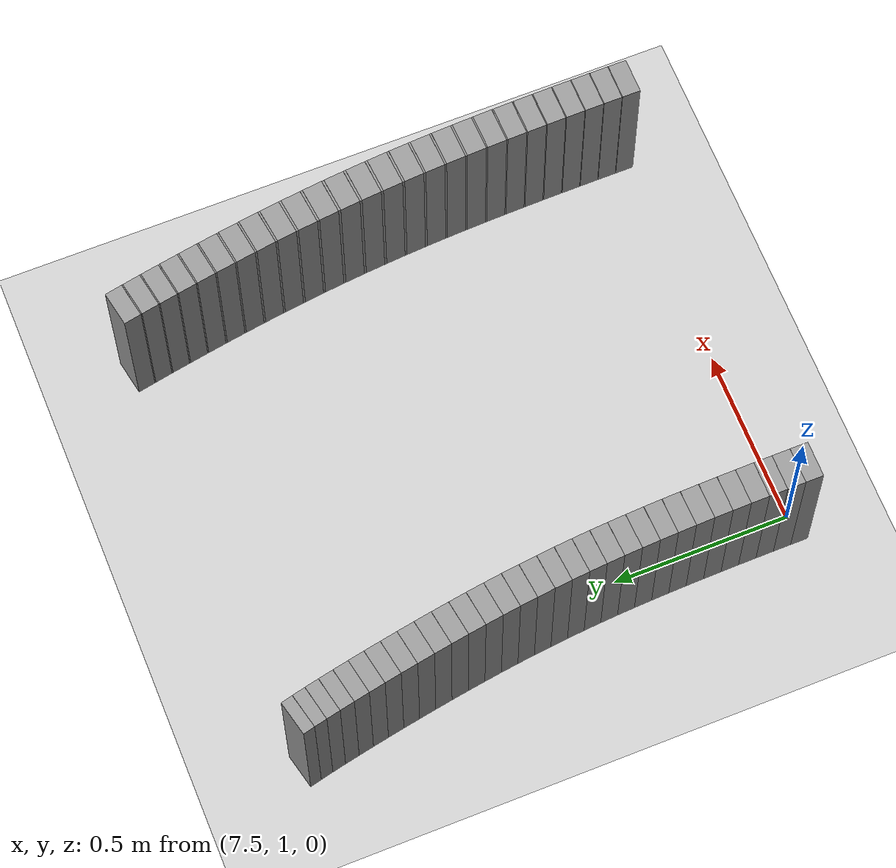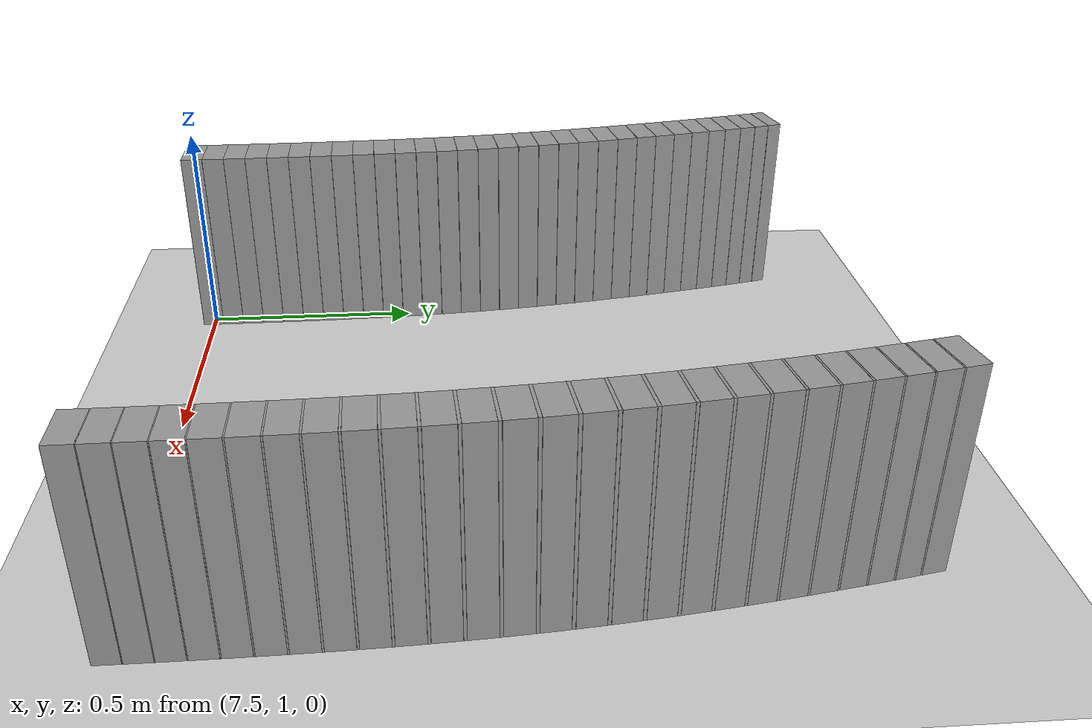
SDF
<sdf version="1.6">
 <world name="default">
  <include><uri>model://ground_plane</uri></include>
  <include><uri>model://sun</uri></include>
  <model name="wall_755_outward">
   <static>true</static>
   <link name="link">
    <collision name="collision">
     <geometry><box><size>0.04999940062287603 0.1 0.45</size></box></geometry>
    </collision>
    <visual name="visual">
     <geometry><box><size>0.04999940062287603 0.1 0.45</size></box></geometry>
     <material>
      <script><uri>file://media/materials/scripts/gazebo.material</uri><name>Gazebo/Gray</name></script>
     </material>
    </visual>
   </link>
   <pose>7.474072652375013 0.9967339557245998 0.225 0 0 1.5715697347107414</pose>
  </model>
  <model name="wall_756_outward">
   <static>true</static>
   <link name="link">
    <collision name="collision">
     <geometry><box><size>0.05058547169745661 0.1 0.45</size></box></geometry>
    </collision>
    <visual name="visual">
     <geometry><box><size>0.05058547169745661 0.1 0.45</size></box></geometry>
     <material>
      <script><uri>file://media/materials/scripts/gazebo.material</uri><name>Gazebo/Gray</name></script>
     </material>
    </visual>
   </link>
   <pose>7.473969025823882 1.0470262439507052 0.225 0 0 1.5741289731119739</pose>
  </model>
  <model name="wall_757_outward">
   <static>true</static>
   <link name="link">
    <collision name="collision">
     <geometry><box><size>0.05102732690675592 0.1 0.45</size></box></geometry>
    </collision>
    <visual name="visual">
     <geometry><box><size>0.05102732690675592 0.1 0.45</size></box></geometry>
     <material>
      <script><uri>file://media/materials/scripts/gazebo.material</uri><name>Gazebo/Gray</name></script>
     </material>
    </visual>
   </link>
   <pose>7.473728324185354 1.0978320233597247 0.225 0 0 1.576926807883827</pose>
  </model>
  <model name="wall_758_outward">
   <static>true</static>
   <link name="link">
    <collision name="collision">
     <geometry><box><size>0.05132378979045729 0.1 0.45</size></box></geometry>
    </collision>
    <visual name="visual">
     <geometry><box><size>0.05132378979045729 0.1 0.45</size></box></geometry>
     <material>
      <script><uri>file://media/materials/scripts/gazebo.material</uri><name>Gazebo/Gray</name></script>
     </material>
    </visual>
   </link>
   <pose>7.4733325857411 1.1490059862339037 0.225 0 0 1.580122678694432</pose>
  </model>
  <model name="wall_759_outward">
   <static>true</static>
   <link name="link">
    <collision name="collision">
     <geometry><box><size>0.05147630832198437 0.1 0.45</size></box></geometry>
    </collision>
    <visual name="visual">
     <geometry><box><size>0.05147630832198437 0.1 0.45</size></box></geometry>
     <material>
      <script><uri>file://media/materials/scripts/gazebo.material</uri><name>Gazebo/Gray</name></script>
     </material>
    </visual>
   </link>
   <pose>7.472756397936079 1.2004027147593663 0.225 0 0 1.5838846402766995</pose>
  </model>
  <model name="wall_760_outward">
   <static>true</static>
   <link name="link">
    <collision name="collision">
     <geometry><box><size>0.05149324610273501 0.1 0.45</size></box></geometry>
    </collision>
    <visual name="visual">
     <geometry><box><size>0.05149324610273501 0.1 0.45</size></box></geometry>
     <material>
      <script><uri>file://media/materials/scripts/gazebo.material</uri><name>Gazebo/Gray</name></script>
     </material>
    </visual>
   </link>
   <pose>7.471967346698286 1.2518813162165605 0.225 0 0 1.5883603807397497</pose>
  </model>
  <model name="wall_761_outward">
   <static>true</static>
   <link name="link">
    <collision name="collision">
     <geometry><box><size>0.051401930930337354 0.1 0.45</size></box></geometry>
    </collision>
    <visual name="visual">
     <geometry><box><size>0.051401930930337354 0.1 0.45</size></box></geometry>
     <material>
      <script><uri>file://media/materials/scripts/gazebo.material</uri><name>Gazebo/Gray</name></script>
     </material>
    </visual>
   </link>
   <pose>7.470926893843407 1.3033182003306485 0.225 0 0 1.5936870001627776</pose>
  </model>
  <model name="wall_762_outward">
   <static>true</static>
   <link name="link">
    <collision name="collision">
     <geometry><box><size>0.051225217573458076 0.1 0.45</size></box></geometry>
    </collision>
    <visual name="visual">
     <geometry><box><size>0.051225217573458076 0.1 0.45</size></box></geometry>
     <material>
      <script><uri>file://media/materials/scripts/gazebo.material</uri><name>Gazebo/Gray</name></script>
     </material>
    </visual>
   </link>
   <pose>7.469592484546444 1.3546141707149433 0.225 0 0 1.599932517251916</pose>
  </model>
  <model name="wall_763_outward">
   <static>true</static>
   <link name="link">
    <collision name="collision">
     <geometry><box><size>0.05098930547745496 0.1 0.45</size></box></geometry>
    </collision>
    <visual name="visual">
     <geometry><box><size>0.05098930547745496 0.1 0.45</size></box></geometry>
     <material>
      <script><uri>file://media/materials/scripts/gazebo.material</uri><name>Gazebo/Gray</name></script>
     </material>
    </visual>
   </link>
   <pose>7.4679192142060185 1.405693698374173 0.225 0 0 1.6071697007660601</pose>
  </model>
  <model name="wall_764_outward">
   <static>true</static>
   <link name="link">
    <collision name="collision">
     <geometry><box><size>0.05073185098207866 0.1 0.45</size></box></geometry>
    </collision>
    <visual name="visual">
     <geometry><box><size>0.05073185098207866 0.1 0.45</size></box></geometry>
     <material>
      <script><uri>file://media/materials/scripts/gazebo.material</uri><name>Gazebo/Gray</name></script>
     </material>
    </visual>
   </link>
   <pose>7.4658613628007355 1.456512198840723 0.225 0 0 1.6153878061569489</pose>
  </model>
  <model name="wall_765_outward">
   <static>true</static>
   <link name="link">
    <collision name="collision">
     <geometry><box><size>0.05048592145687677 0.1 0.45</size></box></geometry>
    </collision>
    <visual name="visual">
     <geometry><box><size>0.05048592145687677 0.1 0.45</size></box></geometry>
     <material>
      <script><uri>file://media/materials/scripts/gazebo.material</uri><name>Gazebo/Gray</name></script>
     </material>
    </visual>
   </link>
   <pose>7.463374481019806 1.5070594151541945 0.225 0 0 1.6245461892416444</pose>
  </model>
  <model name="wall_766_outward">
   <static>true</static>
   <link name="link">
    <collision name="collision">
     <geometry><box><size>0.05028816192538877 0.1 0.45</size></box></geometry>
    </collision>
    <visual name="visual">
     <geometry><box><size>0.05028816192538877 0.1 0.45</size></box></geometry>
     <material>
      <script><uri>file://media/materials/scripts/gazebo.material</uri><name>Gazebo/Gray</name></script>
     </material>
    </visual>
   </link>
   <pose>7.460416910959249 1.5573589528833742 0.225 0 0 1.6345291095814505</pose>
  </model>
  <model name="wall_767_outward">
   <static>true</static>
   <link name="link">
    <collision name="collision">
     <geometry><box><size>0.05015565338645971 0.1 0.45</size></box></geometry>
    </collision>
    <visual name="visual">
     <geometry><box><size>0.05015565338645971 0.1 0.45</size></box></geometry>
     <material>
      <script><uri>file://media/materials/scripts/gazebo.material</uri><name>Gazebo/Gray</name></script>
     </material>
    </visual>
   </link>
   <pose>7.456952177086716 1.6074604926009246 0.225 0 0 1.6451662082789376</pose>
  </model>
  <model name="wall_768_outward">
   <static>true</static>
   <link name="link">
    <collision name="collision">
     <geometry><box><size>0.05010650585417933 0.1 0.45</size></box></geometry>
    </collision>
    <visual name="visual">
     <geometry><box><size>0.05010650585417933 0.1 0.45</size></box></geometry>
     <material>
      <script><uri>file://media/materials/scripts/gazebo.material</uri><name>Gazebo/Gray</name></script>
     </material>
    </visual>
   </link>
   <pose>7.452950037549671 1.6574307891797928 0.225 0 0 1.6562714496041848</pose>
  </model>
  <model name="wall_769_outward">
   <static>true</static>
   <link name="link">
    <collision name="collision">
     <geometry><box><size>0.05014220982315348 0.1 0.45</size></box></geometry>
    </collision>
    <visual name="visual">
     <geometry><box><size>0.05014220982315348 0.1 0.45</size></box></geometry>
     <material>
      <script><uri>file://media/materials/scripts/gazebo.material</uri><name>Gazebo/Gray</name></script>
     </material>
    </visual>
   </link>
   <pose>7.448388405040735 1.707346341504156 0.225 0 0 1.667584888873029</pose>
  </model>
  <model name="wall_770_outward">
   <static>true</static>
   <link name="link">
    <collision name="collision">
     <geometry><box><size>0.05024523481825652 0.1 0.45</size></box></geometry>
    </collision>
    <visual name="visual">
     <geometry><box><size>0.05024523481825652 0.1 0.45</size></box></geometry>
     <material>
      <script><uri>file://media/materials/scripts/gazebo.material</uri><name>Gazebo/Gray</name></script>
     </material>
    </visual>
   </link>
   <pose>7.4432557058535265 1.7572761412389317 0.225 0 0 1.6788731498375669</pose>
  </model>
  <model name="wall_771_outward">
   <static>true</static>
   <link name="link">
    <collision name="collision">
     <geometry><box><size>0.05039663288800668 0.1 0.45</size></box></geometry>
    </collision>
    <visual name="visual">
     <geometry><box><size>0.05039663288800668 0.1 0.45</size></box></geometry>
     <material>
      <script><uri>file://media/materials/scripts/gazebo.material</uri><name>Gazebo/Gray</name></script>
     </material>
    </visual>
   </link>
   <pose>7.437551950396877 1.807272008346724 0.225 0 0 1.689889773374664</pose>
  </model>
  <model name="wall_772_outward">
   <static>true</static>
   <link name="link">
    <collision name="collision">
     <geometry><box><size>0.0505562168507344 0.1 0.45</size></box></geometry>
    </collision>
    <visual name="visual">
     <geometry><box><size>0.0505562168507344 0.1 0.45</size></box></geometry>
     <material>
      <script><uri>file://media/materials/scripts/gazebo.material</uri><name>Gazebo/Gray</name></script>
     </material>
    </visual>
   </link>
   <pose>7.431291072229316 1.8573579393917226 0.225 0 0 1.7004016303081162</pose>
  </model>
  <model name="wall_773_outward">
   <static>true</static>
   <link name="link">
    <collision name="collision">
     <geometry><box><size>0.05067137691725271 0.1 0.45</size></box></geometry>
    </collision>
    <visual name="visual">
     <geometry><box><size>0.05067137691725271 0.1 0.45</size></box></geometry>
     <material>
      <script><uri>file://media/materials/scripts/gazebo.material</uri><name>Gazebo/Gray</name></script>
     </material>
    </visual>
   </link>
   <pose>7.424502512938164 1.9075137951429715 0.225 0 0 1.710243320487764</pose>
  </model>
  <model name="wall_774_outward">
   <static>true</static>
   <link name="link">
    <collision name="collision">
     <geometry><box><size>0.05069943239635506 0.1 0.45</size></box></geometry>
    </collision>
    <visual name="visual">
     <geometry><box><size>0.05069943239635506 0.1 0.45</size></box></geometry>
     <material>
      <script><uri>file://media/materials/scripts/gazebo.material</uri><name>Gazebo/Gray</name></script>
     </material>
    </visual>
   </link>
   <pose>7.417230404571461 1.9576742783139003 0.225 0 0 1.7192943061440742</pose>
  </model>
  <model name="wall_775_outward">
   <static>true</static>
   <link name="link">
    <collision name="collision">
     <geometry><box><size>0.05058167378456856 0.1 0.45</size></box></geometry>
    </collision>
    <visual name="visual">
     <geometry><box><size>0.05058167378456856 0.1 0.45</size></box></geometry>
     <material>
      <script><uri>file://media/materials/scripts/gazebo.material</uri><name>Gazebo/Gray</name></script>
     </material>
    </visual>
   </link>
   <pose>7.409533112707823 2.007725994036016 0.225 0 0 1.7274905179231208</pose>
  </model>
  <model name="wall_776_outward">
   <static>true</static>
   <link name="link">
    <collision name="collision">
     <geometry><box><size>0.050280133267599225 0.1 0.45</size></box></geometry>
    </collision>
    <visual name="visual">
     <geometry><box><size>0.050280133267599225 0.1 0.45</size></box></geometry>
     <material>
      <script><uri>file://media/materials/scripts/gazebo.material</uri><name>Gazebo/Gray</name></script>
     </material>
    </visual>
   </link>
   <pose>7.40148014327141 2.05750943634425 0.225 0 0 1.7348658941817146</pose>
  </model>
  <model name="wall_777_outward">
   <static>true</static>
   <link name="link">
    <collision name="collision">
     <geometry><box><size>0.04974505458963143 0.1 0.45</size></box></geometry>
    </collision>
    <visual name="visual">
     <geometry><box><size>0.04974505458963143 0.1 0.45</size></box></geometry>
     <material>
      <script><uri>file://media/materials/scripts/gazebo.material</uri><name>Gazebo/Gray</name></script>
     </material>
    </visual>
   </link>
   <pose>7.393149353317451 2.106823026798084 0.225 0 0 1.7414718190460587</pose>
  </model>
  <model name="wall_778_outward">
   <static>true</static>
   <link name="link">
    <collision name="collision">
     <geometry><box><size>0.04893772737349848 0.1 0.45</size></box></geometry>
    </collision>
    <visual name="visual">
     <geometry><box><size>0.04893772737349848 0.1 0.45</size></box></geometry>
     <material>
      <script><uri>file://media/materials/scripts/gazebo.material</uri><name>Gazebo/Gray</name></script>
     </material>
    </visual>
   </link>
   <pose>7.384623387963387 2.155421983777271 0.225 0 0 1.7475059111861817</pose>
  </model>
  <model name="wall_779_outward">
   <static>true</static>
   <link name="link">
    <collision name="collision">
     <geometry><box><size>0.04782854464664337 0.1 0.45</size></box></geometry>
    </collision>
    <visual name="visual">
     <geometry><box><size>0.04782854464664337 0.1 0.45</size></box></geometry>
     <material>
      <script><uri>file://media/materials/scripts/gazebo.material</uri><name>Gazebo/Gray</name></script>
     </material>
    </visual>
   </link>
   <pose>7.375984475066058 2.203027426495668 0.225 0 0 1.753182788865761</pose>
  </model>
  <model name="wall_780_outward">
   <static>true</static>
   <link name="link">
    <collision name="collision">
     <geometry><box><size>0.04638214005898841 0.1 0.45</size></box></geometry>
    </collision>
    <visual name="visual">
     <geometry><box><size>0.04638214005898841 0.1 0.45</size></box></geometry>
     <material>
      <script><uri>file://media/materials/scripts/gazebo.material</uri><name>Gazebo/Gray</name></script>
     </material>
    </visual>
   </link>
   <pose>7.367311573612363 2.2493272782761604 0.225 0 0 1.7588454700725462</pose>
  </model>
  <model name="wall_781_outward">
   <static>true</static>
   <link name="link">
    <collision name="collision">
     <geometry><box><size>0.04458674463327589 0.1 0.45</size></box></geometry>
    </collision>
    <visual name="visual">
     <geometry><box><size>0.04458674463327589 0.1 0.45</size></box></geometry>
     <material>
      <script><uri>file://media/materials/scripts/gazebo.material</uri><name>Gazebo/Gray</name></script>
     </material>
    </visual>
   </link>
   <pose>7.3586760619513445 2.293984231605792 0.225 0 0 1.7649001853922186</pose>
  </model>
  <model name="wall_782_outward">
   <static>true</static>
   <link name="link">
    <collision name="collision">
     <geometry><box><size>0.04242651113943479 0.1 0.45</size></box></geometry>
    </collision>
    <visual name="visual">
     <geometry><box><size>0.04242651113943479 0.1 0.45</size></box></geometry>
     <material>
      <script><uri>file://media/materials/scripts/gazebo.material</uri><name>Gazebo/Gray</name></script>
     </material>
    </visual>
   </link>
   <pose>7.350140303303038 2.3366450434388577 0.225 0 0 1.771817431136403</pose>
  </model>
  <model name="wall_783_outward">
   <static>true</static>
   <link name="link">
    <collision name="collision">
     <geometry><box><size>0.03988528980407616 0.1 0.45</size></box></geometry>
    </collision>
    <visual name="visual">
     <geometry><box><size>0.03988528980407616 0.1 0.45</size></box></geometry>
     <material>
      <script><uri>file://media/materials/scripts/gazebo.material</uri><name>Gazebo/Gray</name></script>
     </material>
    </visual>
   </link>
   <pose>7.341759904404654 2.3769383138932487 0.225 0 0 1.780155846308812</pose>
  </model>
  <model name="wall_784_outward">
   <static>true</static>
   <link name="link">
    <collision name="collision">
     <geometry><box><size>0.03695322734307394 0.1 0.45</size></box></geometry>
    </collision>
    <visual name="visual">
     <geometry><box><size>0.03695322734307394 0.1 0.45</size></box></geometry>
     <material>
      <script><uri>file://media/materials/scripts/gazebo.material</uri><name>Gazebo/Gray</name></script>
     </material>
    </visual>
   </link>
   <pose>7.3335873478316245 2.4144777450938535 0.225 0 0 1.7905558342553964</pose>
  </model>
  <model name="wall_785_outward">
   <static>true</static>
   <link name="link">
    <collision name="collision">
     <geometry><box><size>0.033640988669867256 0.1 0.45</size></box></geometry>
    </collision>
    <visual name="visual">
     <geometry><box><size>0.033640988669867256 0.1 0.45</size></box></geometry>
     <material>
      <script><uri>file://media/materials/scripts/gazebo.material</uri><name>Gazebo/Gray</name></script>
     </material>
    </visual>
   </link>
   <pose>7.325676952891332 2.448876256914524 0.225 0 0 1.8037216019436337</pose>
  </model>
  <model name="wall_1102_inward">
   <static>true</static>
   <link name="link">
    <collision name="collision">
     <geometry><box><size>0.051518427734163715 0.1 0.45</size></box></geometry>
    </collision>
    <visual name="visual">
     <geometry><box><size>0.051518427734163715 0.1 0.45</size></box></geometry>
     <material>
      <script><uri>file://media/materials/scripts/gazebo.material</uri><name>Gazebo/Gray</name></script>
     </material>
    </visual>
   </link>
   <pose>8.674072287092049 0.9976703035125246 0.225 0 0 1.5715697347107274</pose>
  </model>
  <model name="wall_1103_inward">
   <static>true</static>
   <link name="link">
    <collision name="collision">
     <geometry><box><size>0.001535542621692474 0.1 0.45</size></box></geometry>
    </collision>
    <visual name="visual">
     <geometry><box><size>0.001535542621692474 0.1 0.45</size></box></geometry>
     <material>
      <script><uri>file://media/materials/scripts/gazebo.material</uri><name>Gazebo/Gray</name></script>
     </material>
    </visual>
   </link>
   <pose>8.674050788459912 1.0241972793683431 0.225 0 0 1.5728493539117039</pose>
  </model>
  <model name="wall_1104_inward">
   <static>true</static>
   <link name="link">
    <collision name="collision">
     <geometry><box><size>0.05219259461584057 0.1 0.45</size></box></geometry>
    </collision>
    <visual name="visual">
     <geometry><box><size>0.05219259461584057 0.1 0.45</size></box></geometry>
     <material>
      <script><uri>file://media/materials/scripts/gazebo.material</uri><name>Gazebo/Gray</name></script>
     </material>
    </visual>
   </link>
   <pose>8.673962242637575 1.051061201449523 0.225 0 0 1.574128973111975</pose>
  </model>
  <model name="wall_1105_inward">
   <static>true</static>
   <link name="link">
    <collision name="collision">
     <geometry><box><size>0.0016787003155830154 0.1 0.45</size></box></geometry>
    </collision>
    <visual name="visual">
     <geometry><box><size>0.0016787003155830154 0.1 0.45</size></box></geometry>
     <material>
      <script><uri>file://media/materials/scripts/gazebo.material</uri><name>Gazebo/Gray</name></script>
     </material>
    </visual>
   </link>
   <pose>8.673871301645528 1.0779966946001551 0.225 0 0 1.5755278904978922</pose>
  </model>
  <model name="wall_1106_inward">
   <static>true</static>
   <link name="link">
    <collision name="collision">
     <geometry><box><size>0.05282543994509279 0.1 0.45</size></box></geometry>
    </collision>
    <visual name="visual">
     <geometry><box><size>0.05282543994509279 0.1 0.45</size></box></geometry>
     <material>
      <script><uri>file://media/materials/scripts/gazebo.material</uri><name>Gazebo/Gray</name></script>
     </material>
    </visual>
   </link>
   <pose>8.673705408555556 1.1052482590045427 0.225 0 0 1.5769268078838263</pose>
  </model>
  <model name="wall_1107_inward">
   <static>true</static>
   <link name="link">
    <collision name="collision">
     <geometry><box><size>0.0019175216703303777 0.1 0.45</size></box></geometry>
    </collision>
    <visual name="visual">
     <geometry><box><size>0.0019175216703303777 0.1 0.45</size></box></geometry>
     <material>
      <script><uri>file://media/materials/scripts/gazebo.material</uri><name>Gazebo/Gray</name></script>
     </material>
    </visual>
   </link>
   <pose>8.673536077260216 1.1326192148493508 0.225 0 0 1.5785247432885945</pose>
  </model>
  <model name="wall_1108_inward">
   <static>true</static>
   <link name="link">
    <collision name="collision">
     <geometry><box><size>0.05341114165512835 0.1 0.45</size></box></geometry>
    </collision>
    <visual name="visual">
     <geometry><box><size>0.05341114165512835 0.1 0.45</size></box></geometry>
     <material>
      <script><uri>file://media/materials/scripts/gazebo.material</uri><name>Gazebo/Gray</name></script>
     </material>
    </visual>
   </link>
   <pose>8.67327960569035 1.1602823564515172 0.225 0 0 1.5801226786944316</pose>
  </model>
  <model name="wall_1109_inward">
   <static>true</static>
   <link name="link">
    <collision name="collision">
     <geometry><box><size>0.002257175618348771 0.1 0.45</size></box></geometry>
    </collision>
    <visual name="visual">
     <geometry><box><size>0.002257175618348771 0.1 0.45</size></box></geometry>
     <material>
      <script><uri>file://media/materials/scripts/gazebo.material</uri><name>Gazebo/Gray</name></script>
     </material>
    </visual>
   </link>
   <pose>8.673017895555507 1.1881152827831836 0.225 0 0 1.582003659485509</pose>
  </model>
  <model name="wall_1110_inward">
   <static>true</static>
   <link name="link">
    <collision name="collision">
     <geometry><box><size>0.05394762250837233 0.1 0.45</size></box></geometry>
    </collision>
    <visual name="visual">
     <geometry><box><size>0.05394762250837233 0.1 0.45</size></box></geometry>
     <material>
      <script><uri>file://media/materials/scripts/gazebo.material</uri><name>Gazebo/Gray</name></script>
     </material>
    </visual>
   </link>
   <pose>8.672652215743234 1.2162153006423182 0.225 0 0 1.5838846402767046</pose>
  </model>
  <model name="wall_1111_inward">
   <static>true</static>
   <link name="link">
    <collision name="collision">
     <geometry><box><size>0.002685442036350546 0.1 0.45</size></box></geometry>
    </collision>
    <visual name="visual">
     <geometry><box><size>0.002685442036350546 0.1 0.45</size></box></geometry>
     <material>
      <script><uri>file://media/materials/scripts/gazebo.material</uri><name>Gazebo/Gray</name></script>
     </material>
    </visual>
   </link>
   <pose>8.672278606141848 1.2445293648933924 0.225 0 0 1.5861225105087402</pose>
  </model>
  <model name="wall_1112_inward">
   <static>true</static>
   <link name="link">
    <collision name="collision">
     <geometry><box><size>0.05443396008824362 0.1 0.45</size></box></geometry>
    </collision>
    <visual name="visual">
     <geometry><box><size>0.05443396008824362 0.1 0.45</size></box></geometry>
     <material>
      <script><uri>file://media/materials/scripts/gazebo.material</uri><name>Gazebo/Gray</name></script>
     </material>
    </visual>
   </link>
   <pose>8.67178001223131 1.273084710204936 0.225 0 0 1.588360380739753</pose>
  </model>
  <model name="wall_1113_inward">
   <static>true</static>
   <link name="link">
    <collision name="collision">
     <geometry><box><size>0.003195967875523281 0.1 0.45</size></box></geometry>
    </collision>
    <visual name="visual">
     <geometry><box><size>0.003195967875523281 0.1 0.45</size></box></geometry>
     <material>
      <script><uri>file://media/materials/scripts/gazebo.material</uri><name>Gazebo/Gray</name></script>
     </material>
    </visual>
   </link>
   <pose>8.671269675506016 1.3018951492367155 0.225 0 0 1.5910236904512651</pose>
  </model>
  <model name="wall_1114_inward">
   <static>true</static>
   <link name="link">
    <collision name="collision">
     <geometry><box><size>0.05487358175275083 0.1 0.45</size></box></geometry>
    </collision>
    <visual name="visual">
     <geometry><box><size>0.05487358175275083 0.1 0.45</size></box></geometry>
     <material>
      <script><uri>file://media/materials/scripts/gazebo.material</uri><name>Gazebo/Gray</name></script>
     </material>
    </visual>
   </link>
   <pose>8.670609362935851 1.3309224092663086 0.225 0 0 1.593687000162769</pose>
  </model>
  <model name="wall_1115_inward">
   <static>true</static>
   <link name="link">
    <collision name="collision">
     <geometry><box><size>0.003747304163098984 0.1 0.45</size></box></geometry>
    </collision>
    <visual name="visual">
     <geometry><box><size>0.003747304163098984 0.1 0.45</size></box></geometry>
     <material>
      <script><uri>file://media/materials/scripts/gazebo.material</uri><name>Gazebo/Gray</name></script>
     </material>
    </visual>
   </link>
   <pose>8.669932636539844 1.360225030419945 0.225 0 0 1.5968097587072607</pose>
  </model>
  <model name="wall_1116_inward">
   <static>true</static>
   <link name="link">
    <collision name="collision">
     <geometry><box><size>0.05527004332129058 0.1 0.45</size></box></geometry>
    </collision>
    <visual name="visual">
     <geometry><box><size>0.05527004332129058 0.1 0.45</size></box></geometry>
     <material>
      <script><uri>file://media/materials/scripts/gazebo.material</uri><name>Gazebo/Gray</name></script>
     </material>
    </visual>
   </link>
   <pose>8.66907883657845 1.3897213411507154 0.225 0 0 1.5999325172519152</pose>
  </model>
  <model name="wall_1117_inward">
   <static>true</static>
   <link name="link">
    <collision name="collision">
     <geometry><box><size>0.004342300631980733 0.1 0.45</size></box></geometry>
    </collision>
    <visual name="visual">
     <geometry><box><size>0.004342300631980733 0.1 0.45</size></box></geometry>
     <material>
      <script><uri>file://media/materials/scripts/gazebo.material</uri><name>Gazebo/Gray</name></script>
     </material>
    </visual>
   </link>
   <pose>8.668202668400955 1.4195146194459416 0.225 0 0 1.6035511090089387</pose>
  </model>
  <model name="wall_1118_inward">
   <static>true</static>
   <link name="link">
    <collision name="collision">
     <geometry><box><size>0.05562591550149158 0.1 0.45</size></box></geometry>
    </collision>
    <visual name="visual">
     <geometry><box><size>0.05562591550149158 0.1 0.45</size></box></geometry>
     <material>
      <script><uri>file://media/materials/scripts/gazebo.material</uri><name>Gazebo/Gray</name></script>
     </material>
    </visual>
   </link>
   <pose>8.667120137505446 1.4494791663757827 0.225 0 0 1.6071697007660681</pose>
  </model>
  <model name="wall_1119_inward">
   <static>true</static>
   <link name="link">
    <collision name="collision">
     <geometry><box><size>0.00493084935882971 0.1 0.45</size></box></geometry>
    </collision>
    <visual name="visual">
     <geometry><box><size>0.00493084935882971 0.1 0.45</size></box></geometry>
     <material>
      <script><uri>file://media/materials/scripts/gazebo.material</uri><name>Gazebo/Gray</name></script>
     </material>
    </visual>
   </link>
   <pose>8.66600893033489 1.4797371323259694 0.225 0 0 1.6112787534615705</pose>
  </model>
  <model name="wall_1120_inward">
   <static>true</static>
   <link name="link">
    <collision name="collision">
     <geometry><box><size>0.05594483060487119 0.1 0.45</size></box></geometry>
    </collision>
    <visual name="visual">
     <geometry><box><size>0.05594483060487119 0.1 0.45</size></box></geometry>
     <material>
      <script><uri>file://media/materials/scripts/gazebo.material</uri><name>Gazebo/Gray</name></script>
     </material>
    </visual>
   </link>
   <pose>8.664662233164629 1.5101451468137017 0.225 0 0 1.6153878061569436</pose>
  </model>
  <model name="wall_1121_inward">
   <static>true</static>
   <link name="link">
    <collision name="collision">
     <geometry><box><size>0.005495010646632295 0.1 0.45</size></box></geometry>
    </collision>
    <visual name="visual">
     <geometry><box><size>0.005495010646632295 0.1 0.45</size></box></geometry>
     <material>
      <script><uri>file://media/materials/scripts/gazebo.material</uri><name>Gazebo/Gray</name></script>
     </material>
    </visual>
   </link>
   <pose>8.663280272861297 1.5408339411434993 0.225 0 0 1.619966997699104</pose>
  </model>
  <model name="wall_1122_inward">
   <static>true</static>
   <link name="link">
    <collision name="collision">
     <geometry><box><size>0.05622835656090268 0.1 0.45</size></box></geometry>
    </collision>
    <visual name="visual">
     <geometry><box><size>0.05622835656090268 0.1 0.45</size></box></geometry>
     <material>
      <script><uri>file://media/materials/scripts/gazebo.material</uri><name>Gazebo/Gray</name></script>
     </material>
    </visual>
   </link>
   <pose>8.661634824915282 1.571651702194439 0.225 0 0 1.6245461892416457</pose>
  </model>
  <model name="wall_1123_inward">
   <static>true</static>
   <link name="link">
    <collision name="collision">
     <geometry><box><size>0.0059897273317975844 0.1 0.45</size></box></geometry>
    </collision>
    <visual name="visual">
     <geometry><box><size>0.0059897273317975844 0.1 0.45</size></box></geometry>
     <material>
      <script><uri>file://media/materials/scripts/gazebo.material</uri><name>Gazebo/Gray</name></script>
     </material>
    </visual>
   </link>
   <pose>8.659948598118435 1.602714976848678 0.225 0 0 1.6295376494116374</pose>
  </model>
  <model name="wall_1124_inward">
   <static>true</static>
   <link name="link">
    <collision name="collision">
     <geometry><box><size>0.056474222598470486 0.1 0.45</size></box></geometry>
    </collision>
    <visual name="visual">
     <geometry><box><size>0.056474222598470486 0.1 0.45</size></box></geometry>
     <material>
      <script><uri>file://media/materials/scripts/gazebo.material</uri><name>Gazebo/Gray</name></script>
     </material>
    </visual>
   </link>
   <pose>8.657974365400626 1.6338844580516312 0.225 0 0 1.6345291095814591</pose>
  </model>
  <model name="wall_1125_inward">
   <static>true</static>
   <link name="link">
    <collision name="collision">
     <geometry><box><size>0.006382229129395957 0.1 0.45</size></box></geometry>
    </collision>
    <visual name="visual">
     <geometry><box><size>0.006382229129395957 0.1 0.45</size></box></geometry>
     <material>
      <script><uri>file://media/materials/scripts/gazebo.material</uri><name>Gazebo/Gray</name></script>
     </material>
    </visual>
   </link>
   <pose>8.65595577813696 1.6652477508880246 0.225 0 0 1.6398476589301731</pose>
  </model>
  <model name="wall_1126_inward">
   <static>true</static>
   <link name="link">
    <collision name="collision">
     <geometry><box><size>0.05667841972235324 0.1 0.45</size></box></geometry>
    </collision>
    <visual name="visual">
     <geometry><box><size>0.05667841972235324 0.1 0.45</size></box></geometry>
     <material>
      <script><uri>file://media/materials/scripts/gazebo.material</uri><name>Gazebo/Gray</name></script>
     </material>
    </visual>
   </link>
   <pose>8.653629961074625 1.696692136321761 0.225 0 0 1.6451662082789251</pose>
  </model>
  <model name="wall_1127_inward">
   <static>true</static>
   <link name="link">
    <collision name="collision">
     <geometry><box><size>0.006663110555984053 0.1 0.45</size></box></geometry>
    </collision>
    <visual name="visual">
     <geometry><box><size>0.006663110555984053 0.1 0.45</size></box></geometry>
     <material>
      <script><uri>file://media/materials/scripts/gazebo.material</uri><name>Gazebo/Gray</name></script>
     </material>
    </visual>
   </link>
   <pose>8.651258336800119 1.7282739325323166 0.225 0 0 1.6507188289416221</pose>
  </model>
  <model name="wall_1128_inward">
   <static>true</static>
   <link name="link">
    <collision name="collision">
     <geometry><box><size>0.05683218047383874 0.1 0.45</size></box></geometry>
    </collision>
    <visual name="visual">
     <geometry><box><size>0.05683218047383874 0.1 0.45</size></box></geometry>
     <material>
      <script><uri>file://media/materials/scripts/gazebo.material</uri><name>Gazebo/Gray</name></script>
     </material>
    </visual>
   </link>
   <pose>8.6485664416113 1.7599072026323253 0.225 0 0 1.6562714496041964</pose>
  </model>
  <model name="wall_1129_inward">
   <static>true</static>
   <link name="link">
    <collision name="collision">
     <geometry><box><size>0.006788027360073792 0.1 0.45</size></box></geometry>
    </collision>
    <visual name="visual">
     <geometry><box><size>0.006788027360073792 0.1 0.45</size></box></geometry>
     <material>
      <script><uri>file://media/materials/scripts/gazebo.material</uri><name>Gazebo/Gray</name></script>
     </material>
    </visual>
   </link>
   <pose>8.645831654509028 1.7915994818914878 0.225 0 0 1.6619281692386254</pose>
  </model>
  <model name="wall_1130_inward">
   <static>true</static>
   <link name="link">
    <collision name="collision">
     <geometry><box><size>0.05692279205552522 0.1 0.45</size></box></geometry>
    </collision>
    <visual name="visual">
     <geometry><box><size>0.05692279205552522 0.1 0.45</size></box></geometry>
     <material>
      <script><uri>file://media/materials/scripts/gazebo.material</uri><name>Gazebo/Gray</name></script>
     </material>
    </visual>
   </link>
   <pose>8.642772341203525 1.8233075981830327 0.225 0 0 1.6675848888730274</pose>
  </model>
  <model name="wall_1131_inward">
   <static>true</static>
   <link name="link">
    <collision name="collision">
     <geometry><box><size>0.0067729206186590805 0.1 0.45</size></box></geometry>
    </collision>
    <visual name="visual">
     <geometry><box><size>0.0067729206186590805 0.1 0.45</size></box></geometry>
     <material>
      <script><uri>file://media/materials/scripts/gazebo.material</uri><name>Gazebo/Gray</name></script>
     </material>
    </visual>
   </link>
   <pose>8.639675624713954 1.8550044944009607 0.225 0 0 1.6732290193552468</pose>
  </model>
  <model name="wall_1132_inward">
   <static>true</static>
   <link name="link">
    <collision name="collision">
     <geometry><box><size>0.05693676955579693 0.1 0.45</size></box></geometry>
    </collision>
    <visual name="visual">
     <geometry><box><size>0.05693676955579693 0.1 0.45</size></box></geometry>
     <material>
      <script><uri>file://media/materials/scripts/gazebo.material</uri><name>Gazebo/Gray</name></script>
     </material>
    </visual>
   </link>
   <pose>8.636258560436337 1.8866754867456725 0.225 0 0 1.6788731498375635</pose>
  </model>
  <model name="wall_1133_inward">
   <static>true</static>
   <link name="link">
    <collision name="collision">
     <geometry><box><size>0.0066099406962262085 0.1 0.45</size></box></geometry>
    </collision>
    <visual name="visual">
     <geometry><box><size>0.0066099406962262085 0.1 0.45</size></box></geometry>
     <material>
      <script><uri>file://media/materials/scripts/gazebo.material</uri><name>Gazebo/Gray</name></script>
     </material>
    </visual>
   </link>
   <pose>8.632813185289582 1.9182614429813687 0.225 0 0 1.6843814616061046</pose>
  </model>
  <model name="wall_1134_inward">
   <static>true</static>
   <link name="link">
    <collision name="collision">
     <geometry><box><size>0.05685523949475052 0.1 0.45</size></box></geometry>
    </collision>
    <visual name="visual">
     <geometry><box><size>0.05685523949475052 0.1 0.45</size></box></geometry>
     <material>
      <script><uri>file://media/materials/scripts/gazebo.material</uri><name>Gazebo/Gray</name></script>
     </material>
    </visual>
   </link>
   <pose>8.629061050578983 1.949771376472749 0.225 0 0 1.6898897733746678</pose>
  </model>
  <model name="wall_1135_inward">
   <static>true</static>
   <link name="link">
    <collision name="collision">
     <geometry><box><size>0.006307085121331419 0.1 0.45</size></box></geometry>
    </collision>
    <visual name="visual">
     <geometry><box><size>0.006307085121331419 0.1 0.45</size></box></geometry>
     <material>
      <script><uri>file://media/materials/scripts/gazebo.material</uri><name>Gazebo/Gray</name></script>
     </material>
    </visual>
   </link>
   <pose>8.625292373462074 1.9811268290930255 0.225 0 0 1.6951457018412626</pose>
  </model>
  <model name="wall_1136_inward">
   <static>true</static>
   <link name="link">
    <collision name="collision">
     <geometry><box><size>0.056662333855359966 0.1 0.45</size></box></geometry>
    </collision>
    <visual name="visual">
     <geometry><box><size>0.056662333855359966 0.1 0.45</size></box></geometry>
     <material>
      <script><uri>file://media/materials/scripts/gazebo.material</uri><name>Gazebo/Gray</name></script>
     </material>
    </visual>
   </link>
   <pose>8.6212396438391 2.0123495747454863 0.225 0 0 1.7004016303081164</pose>
  </model>
  <model name="wall_1137_inward">
   <static>true</static>
   <link name="link">
    <collision name="collision">
     <geometry><box><size>0.0059049902764383615 0.1 0.45</size></box></geometry>
    </collision>
    <visual name="visual">
     <geometry><box><size>0.0059049902764383615 0.1 0.45</size></box></geometry>
     <material>
      <script><uri>file://media/materials/scripts/gazebo.material</uri><name>Gazebo/Gray</name></script>
     </material>
    </visual>
   </link>
   <pose>8.617182054566332 2.043368947015848 0.225 0 0 1.7053224753979466</pose>
  </model>
  <model name="wall_1138_inward">
   <static>true</static>
   <link name="link">
    <collision name="collision">
     <geometry><box><size>0.05633922203634569 0.1 0.45</size></box></geometry>
    </collision>
    <visual name="visual">
     <geometry><box><size>0.05633922203634569 0.1 0.45</size></box></geometry>
     <material>
      <script><uri>file://media/materials/scripts/gazebo.material</uri><name>Gazebo/Gray</name></script>
     </material>
    </visual>
   </link>
   <pose>8.612870614584603 2.074190935318751 0.225 0 0 1.7102433204877547</pose>
  </model>
  <model name="wall_1139_inward">
   <static>true</static>
   <link name="link">
    <collision name="collision">
     <geometry><box><size>0.005430572857323519 0.1 0.45</size></box></geometry>
    </collision>
    <visual name="visual">
     <geometry><box><size>0.005430572857323519 0.1 0.45</size></box></geometry>
     <material>
      <script><uri>file://media/materials/scripts/gazebo.material</uri><name>Gazebo/Gray</name></script>
     </material>
    </visual>
   </link>
   <pose>8.608565588070846 2.1047742979613338 0.225 0 0 1.7147688133160237</pose>
  </model>
  <model name="wall_1140_inward">
   <static>true</static>
   <link name="link">
    <collision name="collision">
     <geometry><box><size>0.055873623928770585 0.1 0.45</size></box></geometry>
    </collision>
    <visual name="visual">
     <geometry><box><size>0.055873623928770585 0.1 0.45</size></box></geometry>
     <material>
      <script><uri>file://media/materials/scripts/gazebo.material</uri><name>Gazebo/Gray</name></script>
     </material>
    </visual>
   </link>
   <pose>8.604042680829686 2.1350908428245114 0.225 0 0 1.7192943061440886</pose>
  </model>
  <model name="wall_1141_inward">
   <static>true</static>
   <link name="link">
    <collision name="collision">
     <geometry><box><size>0.004917713302322563 0.1 0.45</size></box></geometry>
    </collision>
    <visual name="visual">
     <geometry><box><size>0.004917713302322563 0.1 0.45</size></box></geometry>
     <material>
      <script><uri>file://media/materials/scripts/gazebo.material</uri><name>Gazebo/Gray</name></script>
     </material>
    </visual>
   </link>
   <pose>8.599535593576997 2.165150478241931 0.225 0 0 1.723392412033606</pose>
  </model>
  <model name="wall_1142_inward">
   <static>true</static>
   <link name="link">
    <collision name="collision">
     <geometry><box><size>0.055253173990892225 0.1 0.45</size></box></geometry>
    </collision>
    <visual name="visual">
     <geometry><box><size>0.055253173990892225 0.1 0.45</size></box></geometry>
     <material>
      <script><uri>file://media/materials/scripts/gazebo.material</uri><name>Gazebo/Gray</name></script>
     </material>
    </visual>
   </link>
   <pose>8.594850603451508 2.19486888408904 0.225 0 0 1.7274905179231312</pose>
  </model>
  <model name="wall_1143_inward">
   <static>true</static>
   <link name="link">
    <collision name="collision">
     <geometry><box><size>0.004425215725359871 0.1 0.45</size></box></geometry>
    </collision>
    <visual name="visual">
     <geometry><box><size>0.004425215725359871 0.1 0.45</size></box></geometry>
     <material>
      <script><uri>file://media/materials/scripts/gazebo.material</uri><name>Gazebo/Gray</name></script>
     </material>
    </visual>
   </link>
   <pose>8.590186027901755 2.2243412177845023 0.225 0 0 1.7311782060524494</pose>
  </model>
  <model name="wall_1144_inward">
   <static>true</static>
   <link name="link">
    <collision name="collision">
     <geometry><box><size>0.054474540841115526 0.1 0.45</size></box></geometry>
    </collision>
    <visual name="visual">
     <geometry><box><size>0.054474540841115526 0.1 0.45</size></box></geometry>
     <material>
      <script><uri>file://media/materials/scripts/gazebo.material</uri><name>Gazebo/Gray</name></script>
     </material>
    </visual>
   </link>
   <pose>8.585383900083205 2.253396924276704 0.225 0 0 1.7348658941817146</pose>
  </model>
  <model name="wall_1145_inward">
   <static>true</static>
   <link name="link">
    <collision name="collision">
     <geometry><box><size>0.003963547711831533 0.1 0.45</size></box></geometry>
    </collision>
    <visual name="visual">
     <geometry><box><size>0.003963547711831533 0.1 0.45</size></box></geometry>
     <material>
      <script><uri>file://media/materials/scripts/gazebo.material</uri><name>Gazebo/Gray</name></script>
     </material>
    </visual>
   </link>
   <pose>8.58060496709831 2.2822224990164983 0.225 0 0 1.738168856613747</pose>
  </model>
  <model name="wall_1146_inward">
   <static>true</static>
   <link name="link">
    <collision name="collision">
     <geometry><box><size>0.05353707239044285 0.1 0.45</size></box></geometry>
    </collision>
    <visual name="visual">
     <geometry><box><size>0.05353707239044285 0.1 0.45</size></box></geometry>
     <material>
      <script><uri>file://media/materials/scripts/gazebo.material</uri><name>Gazebo/Gray</name></script>
     </material>
    </visual>
   </link>
   <pose>8.575728235000877 2.310556175681266 0.225 0 0 1.7414718190460503</pose>
  </model>
  <model name="wall_1147_inward">
   <static>true</static>
   <link name="link">
    <collision name="collision">
     <geometry><box><size>0.0036204497915113955 0.1 0.45</size></box></geometry>
    </collision>
    <visual name="visual">
     <geometry><box><size>0.0036204497915113955 0.1 0.45</size></box></geometry>
     <material>
      <script><uri>file://media/materials/scripts/gazebo.material</uri><name>Gazebo/Gray</name></script>
     </material>
    </visual>
   </link>
   <pose>8.570868806951399 2.3387187590756158 0.225 0 0 1.7444888651158432</pose>
  </model>
  <model name="wall_1148_inward">
   <static>true</static>
   <link name="link">
    <collision name="collision">
     <geometry><box><size>0.05245102838573827 0.1 0.45</size></box></geometry>
    </collision>
    <visual name="visual">
     <geometry><box><size>0.05245102838573827 0.1 0.45</size></box></geometry>
     <material>
      <script><uri>file://media/materials/scripts/gazebo.material</uri><name>Gazebo/Gray</name></script>
     </material>
    </visual>
   </link>
   <pose>8.565945744297675 2.3663188621228377 0.225 0 0 1.7475059111862037</pose>
  </model>
  <model name="wall_1149_inward">
   <static>true</static>
   <link name="link">
    <collision name="collision">
     <geometry><box><size>0.0034061220340321848 0.1 0.45</size></box></geometry>
    </collision>
    <visual name="visual">
     <geometry><box><size>0.0034061220340321848 0.1 0.45</size></box></geometry>
     <material>
      <script><uri>file://media/materials/scripts/gazebo.material</uri><name>Gazebo/Gray</name></script>
     </material>
    </visual>
   </link>
   <pose>8.561031384661511 2.393811661594294 0.225 0 0 1.7503443500256621</pose>
  </model>
  <model name="wall_1150_inward">
   <static>true</static>
   <link name="link">
    <collision name="collision">
     <geometry><box><size>0.051230421425697135 0.1 0.45</size></box></geometry>
    </collision>
    <visual name="visual">
     <geometry><box><size>0.051230421425697135 0.1 0.45</size></box></geometry>
     <material>
      <script><uri>file://media/materials/scripts/gazebo.material</uri><name>Gazebo/Gray</name></script>
     </material>
    </visual>
   </link>
   <pose>8.556081234483605 2.4206776927871214 0.225 0 0 1.7531827888657883</pose>
  </model>
  <model name="wall_1151_inward">
   <static>true</static>
   <link name="link">
    <collision name="collision">
     <geometry><box><size>0.003397604184603093 0.1 0.45</size></box></geometry>
    </collision>
    <visual name="visual">
     <geometry><box><size>0.003397604184603093 0.1 0.45</size></box></geometry>
     <material>
      <script><uri>file://media/materials/scripts/gazebo.material</uri><name>Gazebo/Gray</name></script>
     </material>
    </visual>
   </link>
   <pose>8.551122372815577 2.447537786562806 0.225 0 0 1.756014129468983</pose>
  </model>
  <model name="wall_1152_inward">
   <static>true</static>
   <link name="link">
    <collision name="collision">
     <geometry><box><size>0.04989736910555956 0.1 0.45</size></box></geometry>
    </collision>
    <visual name="visual">
     <geometry><box><size>0.04989736910555956 0.1 0.45</size></box></geometry>
     <material>
      <script><uri>file://media/materials/scripts/gazebo.material</uri><name>Gazebo/Gray</name></script>
     </material>
    </visual>
   </link>
   <pose>8.546145543748587 2.4737163918957124 0.225 0 0 1.758845470072561</pose>
  </model>
 </world>
</sdf>
